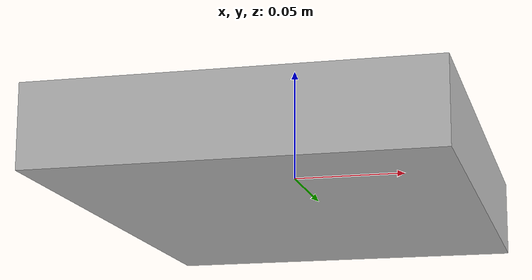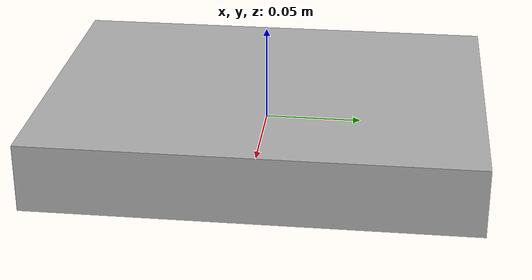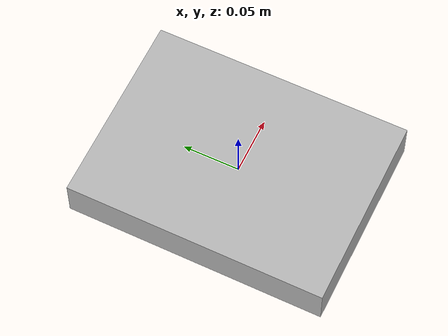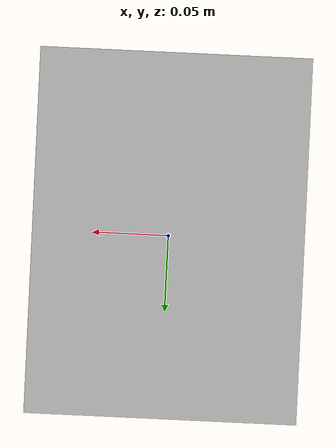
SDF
<?xml version="1.0" ?>
<sdf version="1.6">
  <model name="aws_robomaker_retail_BookE_01">
    <link name="link">
      <inertial>
        <mass>1</mass>
        <inertia>
          <ixy>0</ixy>
          <ixz>0</ixz>
          <iyz>0</iyz>
          <ixx>0.0666</ixx>
          <iyy>0.0346</iyy>
          <izz>0.0986</izz>
        </inertia>
      </inertial>
      <collision name="collision">
        <geometry>
          <mesh>
            <uri>file://models/aws_robomaker_retail_BookE_01/meshes/aws_BookE_01_collision.DAE</uri>
            <scale>1 1 1</scale>
          </mesh>
        </geometry>
      </collision>
      <visual name="visual">
	    <geometry>
          <mesh>
            <uri>file://models/aws_robomaker_retail_BookE_01/meshes/aws_BookE_01_visual.DAE</uri>
          </mesh>
        </geometry>
        <meta>
          <layer>1</layer>
        </meta>
      </visual>
    </link>
    <!-- Keeping this book model static to keep the
         scene composition until physics is stabilized-->
    <static>1</static>
  </model>
</sdf>
